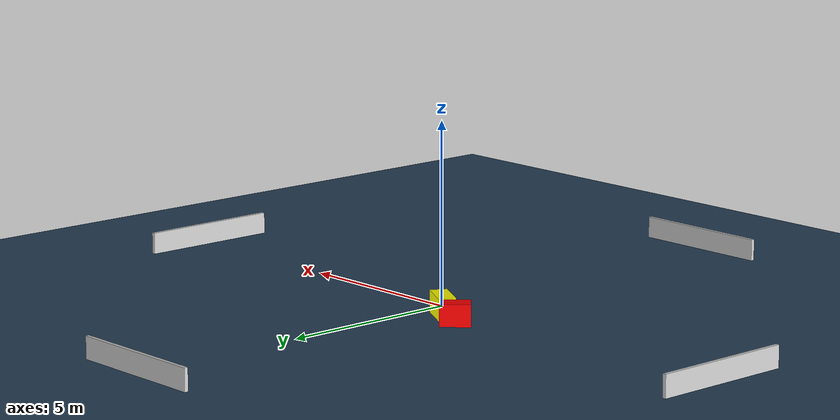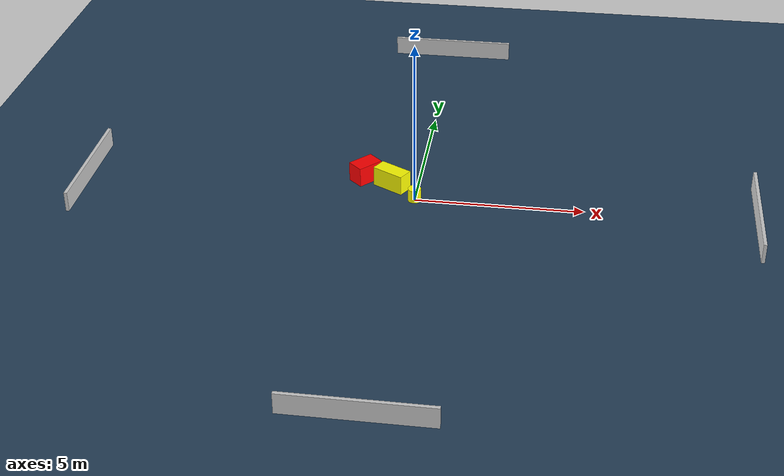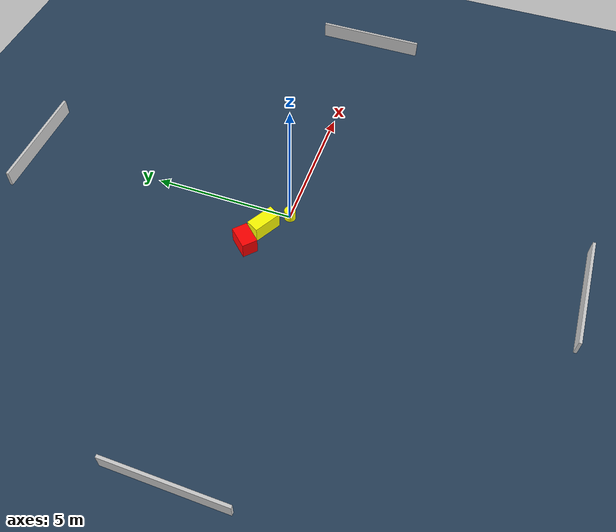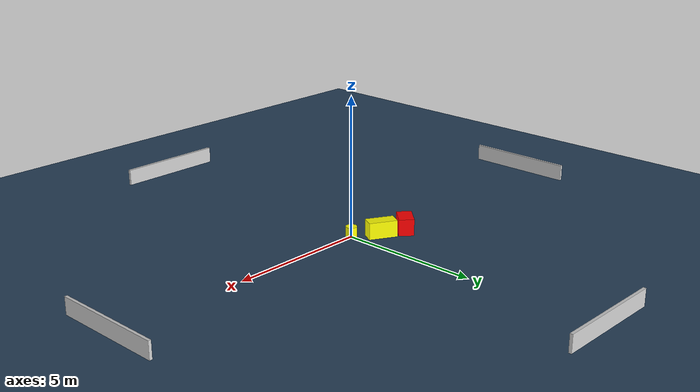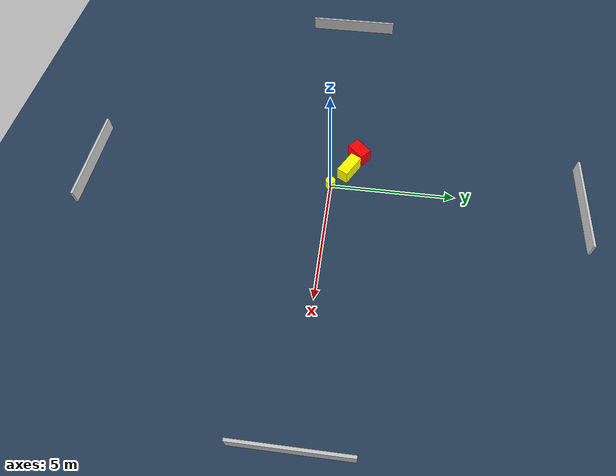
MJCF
<?xml version="1.0" ?>
<mujoco model="generated_environment">
  <option timestep="0.01" integrator="RK4" cone="elliptic"/>
  <default>
    <geom density="1"/>
  </default>
  <asset>
    <texture builtin="gradient" height="3072" name="skybox" rgb1="0.3 0.5 0.7" rgb2="0 0 0" type="skybox" width="512"/>
    <texture builtin="checker" height="300" name="groundplane" rgb1="0.2 0.3 0.4" rgb2="0.1 0.2 0.3" type="2d" width="300"/>
    <material name="groundplane" reflectance="0.2" texrepeat="5 5" texture="groundplane"/>
  </asset>
  <worldbody>
    <light dir="0 0 -1" directional="true" pos="0 0 1.5"/>
    <geom condim="3" friction="0.5 0.005 0.001" material="groundplane" name="floor" pos="0 0 0" size="0 0 0.05" type="plane"/>
    <body name="walls">
      <geom name="wall_1" condim="4" pos="-10.0 0.0 0.3" rgba="0.800000011920929 0.800000011920929 0.800000011920929 1.0" size="0.05 2.0 0.3" type="box"/>
      <geom name="wall_2" condim="4" pos="10.0 0.0 0.3" rgba="0.800000011920929 0.800000011920929 0.800000011920929 1.0" size="0.05 2.0 0.3" type="box"/>
      <geom name="wall_3" condim="4" pos="0.0 -10.0 0.3" rgba="0.800000011920929 0.800000011920929 0.800000011920929 1.0" size="2.0 0.05 0.3" type="box"/>
      <geom name="wall_4" condim="4" pos="0.0 10.0 0.3" rgba="0.800000011920929 0.800000011920929 0.800000011920929 1.0" size="2.0 0.05 0.3" type="box"/>
    </body>
    <body name="robot">
      <joint name="joint_x" type="slide" pos="0 0 0" axis="1 0 0"/>
      <joint name="joint_y" type="slide" pos="0 0 0" axis="0 1 0"/>
      <geom name="robot" type="cylinder" pos="0.0 0.0 0.2" size="0.2 0.2 0.0" mass="5.0" friction="1.0 0.005 0.0001" condim="4" rgba="1.0 1.0 0.0 1.0"/>
    </body>
    <body name="obstacle_1_movable">
      <geom name="obstacle_1_movable" condim="4" pos="-0.7809558839085705 0.6770282257290232 0.3" euler="0 0 331.15206965119006" friction="0.0 0.005 0.001" rgba="1.0 1.0 0.0 1.0" size="0.5130548828513468 0.23564376488501032 0.3" type="box" mass="0.1"/>
      <joint type="free"/>
    </body>
    <body name="obstacle_2_static">
      <geom name="obstacle_2_static" condim="4" pos="-1.6412937230766877 1.0212167803071122 0.3" euler="0 0 47.221102235592674" friction="0.0 0.005 0.001" rgba="1.0 0.0 0.0 1.0" size="0.4094208222818132 0.27042972891559885 0.3" type="box"/>
    </body>
  </worldbody>
  <actuator>
    <motor name="actuator_x" joint="joint_x" gear="1" ctrlrange="-1 1"/>
    <motor name="actuator_y" joint="joint_y" gear="1" ctrlrange="-1 1"/>
  </actuator>
</mujoco>
